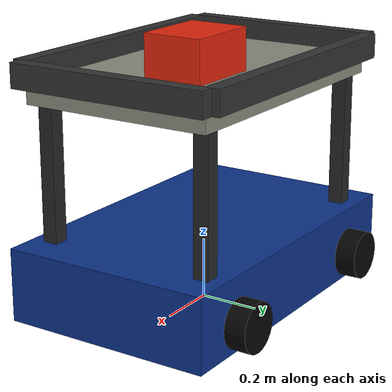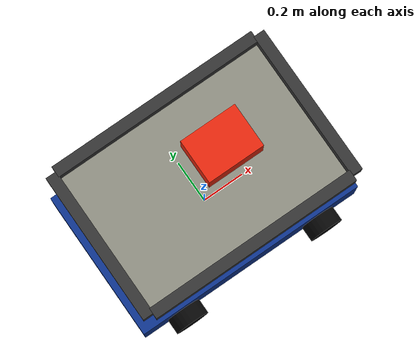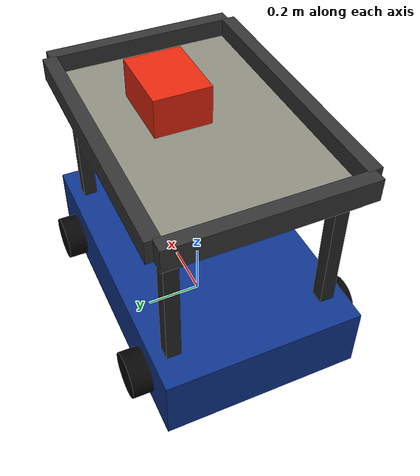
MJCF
<mujoco model="mobile_base_shelf_payload">
      <compiler angle="degree" coordinate="local" />
      <option timestep="0.002" gravity="0 0 -9.81" />

      <worldbody>
            <!-- Mobile robot base -->
            <body name="mobile_base" pos="0 0 0.15">
                  <joint name="base_x" type="slide" axis="1 0 0" damping="2" />
                  <joint name="base_y" type="slide" axis="0 1 0" damping="2" />
                  <joint name="base_yaw" type="hinge" axis="0 0 1" damping="1" />

                  <geom name="base_body" type="box" size="0.55 0.35 0.12"
                        rgba="0.05 0.20 0.55 1" mass="8.0" />

                  <!-- Wheels / visual only -->
                  <geom name="wheel_fl" type="cylinder" pos="0.35 0.38 -0.03"
                        size="0.08 0.04" euler="90 0 0" rgba="0.02 0.02 0.02 1" />
                  <geom name="wheel_fr" type="cylinder" pos="0.35 -0.38 -0.03"
                        size="0.08 0.04" euler="90 0 0" rgba="0.02 0.02 0.02 1" />
                  <geom name="wheel_rl" type="cylinder" pos="-0.35 0.38 -0.03"
                        size="0.08 0.04" euler="90 0 0" rgba="0.02 0.02 0.02 1" />
                  <geom name="wheel_rr" type="cylinder" pos="-0.35 -0.38 -0.03"
                        size="0.08 0.04" euler="90 0 0" rgba="0.02 0.02 0.02 1" />

                  <!-- Shelf supports -->
                  <geom name="post_fl" type="box" pos="0.42 0.28 0.35"
                        size="0.025 0.025 0.25" rgba="0.15 0.15 0.15 1" />
                  <geom name="post_fr" type="box" pos="0.42 -0.28 0.35"
                        size="0.025 0.025 0.25" rgba="0.15 0.15 0.15 1" />
                  <geom name="post_rl" type="box" pos="-0.42 0.28 0.35"
                        size="0.025 0.025 0.25" rgba="0.15 0.15 0.15 1" />
                  <geom name="post_rr" type="box" pos="-0.42 -0.28 0.35"
                        size="0.025 0.025 0.25" rgba="0.15 0.15 0.15 1" />

                  <!-- Shelf platform -->
                  <geom name="shelf_platform" type="box" pos="0 0 0.60"
                        size="0.48 0.32 0.035" rgba="0.55 0.55 0.50 1" mass="3.0" />

                  <!-- Small lip so object can slide but not instantly fall off -->
                  <geom name="shelf_lip_front" type="box" pos="0.50 0 0.66"
                        size="0.025 0.34 0.04" rgba="0.2 0.2 0.2 1" />
                  <geom name="shelf_lip_back" type="box" pos="-0.50 0 0.66"
                        size="0.025 0.34 0.04" rgba="0.2 0.2 0.2 1" />
                  <geom name="shelf_lip_left" type="box" pos="0 0.34 0.66"
                        size="0.48 0.025 0.04" rgba="0.2 0.2 0.2 1" />
                  <geom name="shelf_lip_right" type="box" pos="0 -0.34 0.66"
                        size="0.48 0.025 0.04" rgba="0.2 0.2 0.2 1" />

                  <!-- Sliding internal payload on the shelf -->
                  <body name="payload" pos="0.12 0.05 0.705">

                        <joint name="payload_slide_x"
                              type="slide"
                              axis="1 0 0"
                              limited="true"
                              range="-0.15 0.15"
                              damping="5.0"
                              stiffness="30.0" />

                        <geom name="payload_geom"
                              type="box"
                              size="0.13 0.1 0.07"
                              mass="20.0"
                              rgba="0.9 0.15 0.05 1"
                              friction="2.0 0.1 0.01" />
                  </body>
            </body>
      </worldbody>

      <actuator>
            <motor name="drive_x" joint="base_x" gear="1" ctrlrange="-150 150" />
            <motor name="drive_y" joint="base_y" gear="1" ctrlrange="-150 150" />
            <motor name="drive_yaw" joint="base_yaw" gear="1" ctrlrange="-60 60" />
      </actuator>
</mujoco>
